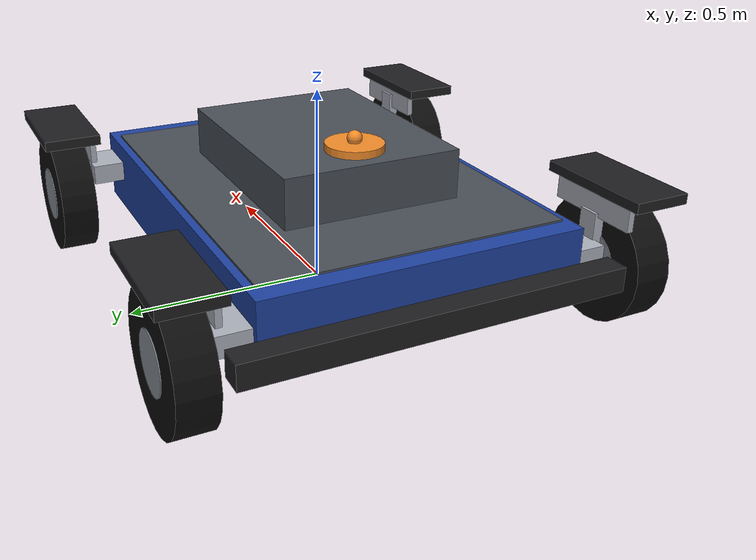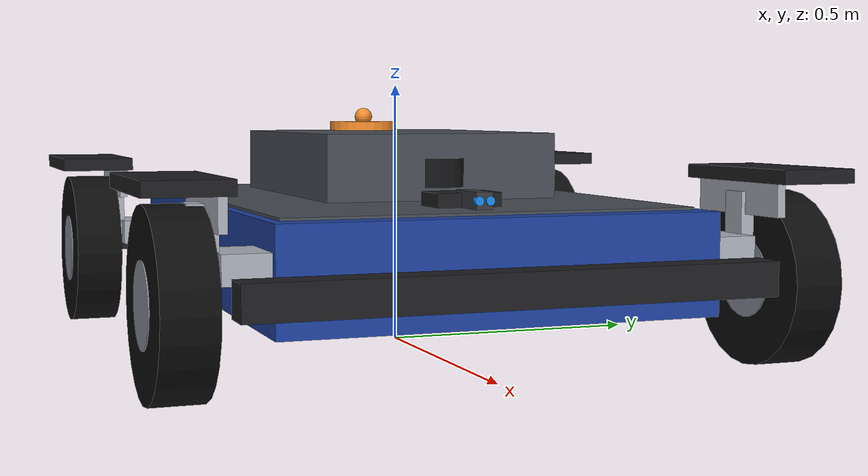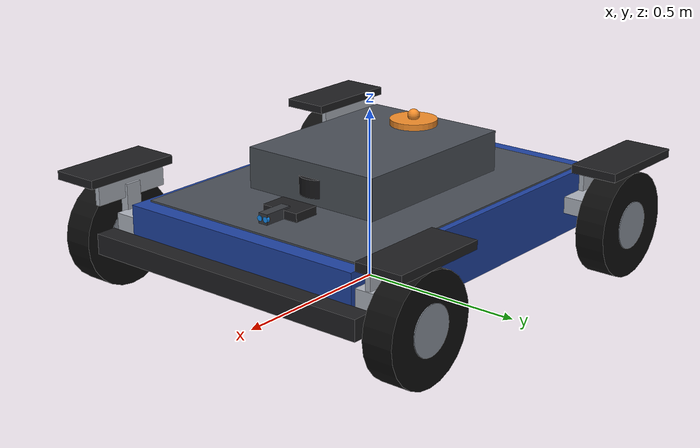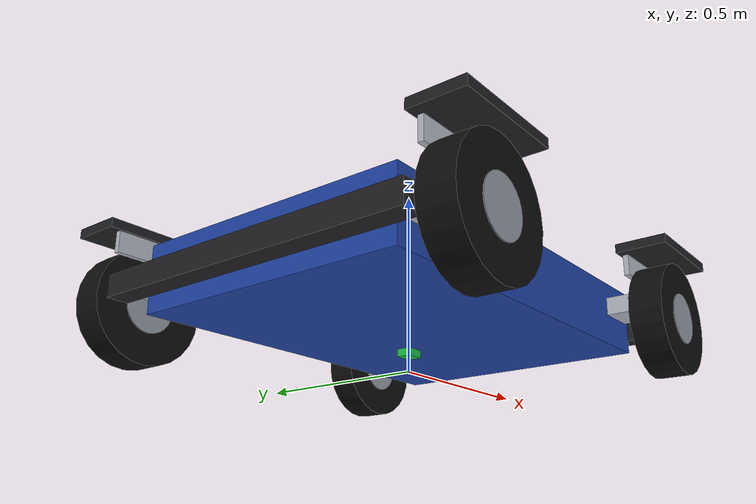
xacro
<?xml version="1.0"?>
<robot xmlns:xacro="http://www.ros.org/wiki/xacro" name="azemauto">

  <!-- Overall dimensions measured on the real robot -->
  <xacro:property name="robot_length" value="1.28"/>
  <xacro:property name="robot_width" value="1.05"/>
  <xacro:property name="robot_height" value="0.46"/>

  <!-- Main body proportions kept intentionally simple but visually close to a wide rover -->
  <xacro:property name="body_length" value="1.10"/>
  <xacro:property name="body_width" value="0.78"/>
  <xacro:property name="body_height" value="0.18"/>
  <xacro:property name="body_center_z" value="0.19"/>

  <xacro:property name="upper_deck_length" value="1.00"/>
  <xacro:property name="upper_deck_width" value="0.74"/>
  <xacro:property name="upper_deck_height" value="0.03"/>
  <xacro:property name="upper_deck_center_z" value="0.27"/>

  <xacro:property name="equipment_box_length" value="0.56"/>
  <xacro:property name="equipment_box_width" value="0.44"/>
  <xacro:property name="equipment_box_height" value="0.12"/>
  <xacro:property name="equipment_box_center_z" value="0.35"/>

  <!-- Wheel geometry and requested placement -->
  <xacro:property name="wheel_radius" value="0.155"/>
  <xacro:property name="wheel_width" value="0.09"/>
  <xacro:property name="half_track" value="0.535"/>
  <xacro:property name="half_wheelbase" value="0.475"/>

  <xacro:property name="front_wheel_x" value="0.475"/>
  <xacro:property name="rear_wheel_x" value="-0.475"/>
  <xacro:property name="left_wheel_y" value="0.535"/>
  <xacro:property name="right_wheel_y" value="-0.535"/>
  <xacro:property name="wheel_center_z" value="0.155"/>

  <!-- Simple guards and frame details to avoid a generic box silhouette -->
  <xacro:property name="fender_length" value="0.30"/>
  <xacro:property name="fender_width" value="0.14"/>
  <xacro:property name="fender_thickness" value="0.025"/>
  <xacro:property name="fender_center_z" value="0.34"/>
  <xacro:property name="fender_inner_brace_width" value="0.015"/>
  <xacro:property name="fender_inner_brace_height" value="0.08"/>
  <xacro:property name="fender_inner_brace_offset" value="0.055"/>

  <xacro:property name="side_rail_length" value="1.02"/>
  <xacro:property name="side_rail_width" value="0.05"/>
  <xacro:property name="side_rail_height" value="0.08"/>
  <xacro:property name="side_rail_y" value="0.36"/>
  <xacro:property name="side_rail_center_z" value="0.23"/>

  <xacro:property name="bumper_length" value="0.06"/>
  <xacro:property name="bumper_width" value="0.92"/>
  <xacro:property name="bumper_height" value="0.06"/>
  <xacro:property name="bumper_front_x" value="0.59"/>
  <xacro:property name="bumper_rear_x" value="-0.59"/>
  <xacro:property name="bumper_center_z" value="0.17"/>

  <xacro:property name="front_axle_length" value="0.12"/>
  <xacro:property name="front_axle_width" value="0.94"/>
  <xacro:property name="front_axle_height" value="0.05"/>
  <xacro:property name="front_axle_center_z" value="0.21"/>

  <xacro:property name="rear_axle_length" value="0.12"/>
  <xacro:property name="rear_axle_width" value="0.94"/>
  <xacro:property name="rear_axle_height" value="0.05"/>
  <xacro:property name="rear_axle_center_z" value="0.19"/>

  <xacro:property name="upright_length" value="0.05"/>
  <xacro:property name="upright_width" value="0.05"/>
  <xacro:property name="front_upright_height" value="0.12"/>
  <xacro:property name="rear_upright_height" value="0.10"/>
  <xacro:property name="front_upright_center_z" value="0.25"/>
  <xacro:property name="rear_upright_center_z" value="0.23"/>
  <xacro:property name="upright_y" value="0.49"/>

  <!-- Sensor frame placement requested for this phase -->
  <xacro:property name="imu_x" value="0.0"/>
  <xacro:property name="imu_y" value="0.0"/>
  <xacro:property name="imu_z" value="0.05"/>

  <xacro:property name="gps_x" value="-0.20"/>
  <xacro:property name="gps_y" value="0.0"/>
  <xacro:property name="gps_z" value="0.28"/>

  <xacro:property name="laser_x" value="0.22"/>
  <xacro:property name="laser_y" value="0.0"/>
  <xacro:property name="laser_z" value="0.34"/>
  <xacro:property name="laser_radius" value="0.055"/>
  <xacro:property name="laser_height" value="0.075"/>

  <xacro:property name="camera_x" value="0.40"/>
  <xacro:property name="camera_y" value="0.0"/>
  <xacro:property name="camera_z" value="0.30"/>
  <xacro:property name="camera_rel_x" value="${camera_x - laser_x}"/>
  <xacro:property name="camera_rel_y" value="${camera_y - laser_y}"/>
  <xacro:property name="camera_rel_z" value="${camera_z - laser_z}"/>

  <!-- Visual palette chosen to resemble a robust outdoor rover -->
  <material name="chassis_blue">
    <color rgba="0.12 0.26 0.63 1.0"/>
  </material>
  <material name="deck_gray">
    <color rgba="0.29 0.31 0.34 1.0"/>
  </material>
  <material name="frame_dark">
    <color rgba="0.12 0.12 0.13 1.0"/>
  </material>
  <material name="metal_light">
    <color rgba="0.68 0.70 0.74 1.0"/>
  </material>
  <material name="wheel_black">
    <color rgba="0.05 0.05 0.05 1.0"/>
  </material>
  <material name="wheel_rim">
    <color rgba="0.55 0.58 0.62 1.0"/>
  </material>
  <material name="imu_green">
    <color rgba="0.10 0.72 0.25 1.0"/>
  </material>
  <material name="gps_orange">
    <color rgba="0.95 0.55 0.16 1.0"/>
  </material>
  <material name="camera_gray">
    <color rgba="0.22 0.23 0.25 1.0"/>
  </material>
  <material name="camera_accent">
    <color rgba="0.08 0.55 0.95 1.0"/>
  </material>
  <material name="lidar_black">
    <color rgba="0.08 0.08 0.09 1.0"/>
  </material>
  <material name="lidar_red">
    <color rgba="0.82 0.10 0.10 1.0"/>
  </material>

  <!-- Reusable macro for the four large wheels -->
  <xacro:macro name="wheel_module" params="name x y z">
    <link name="${name}">
      <visual>
        <origin xyz="0 0 0" rpy="${pi / 2.0} 0 0"/>
        <geometry>
          <cylinder radius="${wheel_radius}" length="${wheel_width}"/>
        </geometry>
        <material name="wheel_black"/>
      </visual>
      <visual>
        <origin xyz="0 0 0" rpy="${pi / 2.0} 0 0"/>
        <geometry>
          <cylinder radius="${wheel_radius * 0.45}" length="${wheel_width * 1.05}"/>
        </geometry>
        <material name="wheel_rim"/>
      </visual>
      <collision>
        <origin xyz="0 0 0" rpy="${pi / 2.0} 0 0"/>
        <geometry>
          <cylinder radius="${wheel_radius}" length="${wheel_width}"/>
        </geometry>
      </collision>
    </link>

    <joint name="${name}_joint" type="fixed">
      <parent link="base_link"/>
      <child link="${name}"/>
      <origin xyz="${x} ${y} ${z}" rpy="0 0 0"/>
    </joint>
  </xacro:macro>

  <!-- Reusable visual-only fender geometry -->
  <xacro:macro name="fender_visual" params="prefix x y side">
    <visual name="${prefix}_top">
      <origin xyz="${x} ${y} ${fender_center_z}" rpy="0 0 0"/>
      <geometry>
        <box size="${fender_length} ${fender_width} ${fender_thickness}"/>
      </geometry>
      <material name="frame_dark"/>
    </visual>

    <visual name="${prefix}_inner_brace">
      <origin
        xyz="${x} ${y - side * fender_inner_brace_offset} ${fender_center_z - 0.03}"
        rpy="0 0 0"/>
      <geometry>
        <box
          size="${fender_length * 0.80} ${fender_inner_brace_width} ${fender_inner_brace_height}"/>
      </geometry>
      <material name="metal_light"/>
    </visual>
  </xacro:macro>

  <link name="base_link">
    <!-- Main lower chassis -->
    <visual name="lower_body">
      <origin xyz="0 0 ${body_center_z}" rpy="0 0 0"/>
      <geometry>
        <box size="${body_length} ${body_width} ${body_height}"/>
      </geometry>
      <material name="chassis_blue"/>
    </visual>

    <!-- Flat upper deck -->
    <visual name="upper_deck">
      <origin xyz="0 0 ${upper_deck_center_z}" rpy="0 0 0"/>
      <geometry>
        <box size="${upper_deck_length} ${upper_deck_width} ${upper_deck_height}"/>
      </geometry>
      <material name="deck_gray"/>
    </visual>

    <!-- Central equipment bay to avoid an overly flat silhouette -->
    <visual name="equipment_box">
      <origin xyz="-0.02 0 ${equipment_box_center_z}" rpy="0 0 0"/>
      <geometry>
        <box size="${equipment_box_length} ${equipment_box_width} ${equipment_box_height}"/>
      </geometry>
      <material name="deck_gray"/>
    </visual>

    <!-- Longitudinal rails -->
    <visual name="left_rail">
      <origin xyz="0 ${side_rail_y} ${side_rail_center_z}" rpy="0 0 0"/>
      <geometry>
        <box size="${side_rail_length} ${side_rail_width} ${side_rail_height}"/>
      </geometry>
      <material name="frame_dark"/>
    </visual>
    <visual name="right_rail">
      <origin xyz="0 ${-side_rail_y} ${side_rail_center_z}" rpy="0 0 0"/>
      <geometry>
        <box size="${side_rail_length} ${side_rail_width} ${side_rail_height}"/>
      </geometry>
      <material name="frame_dark"/>
    </visual>

    <!-- Front and rear bumper bars -->
    <visual name="front_bumper">
      <origin xyz="${bumper_front_x} 0 ${bumper_center_z}" rpy="0 0 0"/>
      <geometry>
        <box size="${bumper_length} ${bumper_width} ${bumper_height}"/>
      </geometry>
      <material name="frame_dark"/>
    </visual>
    <visual name="rear_bumper">
      <origin xyz="${bumper_rear_x} 0 ${bumper_center_z}" rpy="0 0 0"/>
      <geometry>
        <box size="${bumper_length} ${bumper_width} ${bumper_height}"/>
      </geometry>
      <material name="frame_dark"/>
    </visual>

    <!-- Visual hint of front steering and rear axle structure -->
    <visual name="front_axle">
      <origin xyz="${front_wheel_x} 0 ${front_axle_center_z}" rpy="0 0 0"/>
      <geometry>
        <box size="${front_axle_length} ${front_axle_width} ${front_axle_height}"/>
      </geometry>
      <material name="metal_light"/>
    </visual>
    <visual name="rear_axle">
      <origin xyz="${rear_wheel_x} 0 ${rear_axle_center_z}" rpy="0 0 0"/>
      <geometry>
        <box size="${rear_axle_length} ${rear_axle_width} ${rear_axle_height}"/>
      </geometry>
      <material name="metal_light"/>
    </visual>

    <visual name="front_left_upright">
      <origin xyz="${front_wheel_x} ${upright_y} ${front_upright_center_z}" rpy="0 0 0"/>
      <geometry>
        <box size="${upright_length} ${upright_width} ${front_upright_height}"/>
      </geometry>
      <material name="metal_light"/>
    </visual>
    <visual name="front_right_upright">
      <origin xyz="${front_wheel_x} ${-upright_y} ${front_upright_center_z}" rpy="0 0 0"/>
      <geometry>
        <box size="${upright_length} ${upright_width} ${front_upright_height}"/>
      </geometry>
      <material name="metal_light"/>
    </visual>
    <visual name="rear_left_upright">
      <origin xyz="${rear_wheel_x} ${upright_y} ${rear_upright_center_z}" rpy="0 0 0"/>
      <geometry>
        <box size="${upright_length} ${upright_width} ${rear_upright_height}"/>
      </geometry>
      <material name="metal_light"/>
    </visual>
    <visual name="rear_right_upright">
      <origin xyz="${rear_wheel_x} ${-upright_y} ${rear_upright_center_z}" rpy="0 0 0"/>
      <geometry>
        <box size="${upright_length} ${upright_width} ${rear_upright_height}"/>
      </geometry>
      <material name="metal_light"/>
    </visual>

    <!-- Camera support block at the front -->
    <visual name="camera_support">
      <origin xyz="0.34 0 0.26" rpy="0 0 0"/>
      <geometry>
        <box size="0.08 0.12 0.10"/>
      </geometry>
      <material name="frame_dark"/>
    </visual>

    <!-- Lidar pedestal integrated in the front sensor tower -->
    <visual name="lidar_pedestal">
      <origin xyz="${laser_x} ${laser_y} ${laser_z - 0.055}" rpy="0 0 0"/>
      <geometry>
        <cylinder radius="0.022" length="0.11"/>
      </geometry>
      <material name="metal_light"/>
    </visual>

    <!-- Simple wheel arch guards -->
    <xacro:fender_visual prefix="front_left" x="${front_wheel_x}" y="${left_wheel_y}" side="1.0"/>
    <xacro:fender_visual prefix="front_right" x="${front_wheel_x}" y="${right_wheel_y}" side="-1.0"/>
    <xacro:fender_visual prefix="rear_left" x="${rear_wheel_x}" y="${left_wheel_y}" side="1.0"/>
    <xacro:fender_visual prefix="rear_right" x="${rear_wheel_x}" y="${right_wheel_y}" side="-1.0"/>

    <!-- Simplified collision model kept intentionally compact -->
    <collision>
      <origin xyz="0 0 ${body_center_z}" rpy="0 0 0"/>
      <geometry>
        <box size="${body_length} ${body_width} ${body_height}"/>
      </geometry>
    </collision>
    <collision>
      <origin xyz="-0.02 0 ${equipment_box_center_z}" rpy="0 0 0"/>
      <geometry>
        <box size="${equipment_box_length} ${equipment_box_width} ${equipment_box_height}"/>
      </geometry>
    </collision>

    <!-- Approximate inertial properties for visualization-oriented use -->
    <inertial>
      <origin xyz="0 0 0.22" rpy="0 0 0"/>
      <mass value="45.0"/>
      <inertia
        ixx="2.75"
        ixy="0.0"
        ixz="0.0"
        iyy="4.75"
        iyz="0.0"
        izz="6.10"/>
    </inertial>
  </link>

  <!-- Sensor frames used by the rest of the ROS 2 workspace -->
  <link name="imu_link">
    <visual>
      <geometry>
        <box size="0.05 0.04 0.02"/>
      </geometry>
      <material name="imu_green"/>
    </visual>
  </link>

  <joint name="imu_joint" type="fixed">
    <parent link="base_link"/>
    <child link="imu_link"/>
    <origin xyz="${imu_x} ${imu_y} ${imu_z}" rpy="0 0 0"/>
  </joint>

  <link name="gps_link">
    <visual>
      <origin xyz="0 0 0.065" rpy="0 0 0"/>
      <geometry>
        <cylinder radius="0.012" length="0.13"/>
      </geometry>
      <material name="metal_light"/>
    </visual>
    <visual>
      <origin xyz="0 0 0.14" rpy="0 0 0"/>
      <geometry>
        <cylinder radius="0.07" length="0.018"/>
      </geometry>
      <material name="gps_orange"/>
    </visual>
    <visual>
      <origin xyz="0 0 0.159" rpy="0 0 0"/>
      <geometry>
        <sphere radius="0.018"/>
      </geometry>
      <material name="gps_orange"/>
    </visual>
  </link>

  <joint name="gps_joint" type="fixed">
    <parent link="base_link"/>
    <child link="gps_link"/>
    <origin xyz="${gps_x} ${gps_y} ${gps_z}" rpy="0 0 0"/>
  </joint>

  <link name="laser_link">
    <visual>
      <origin xyz="0 0 0" rpy="0 0 0"/>
      <geometry>
        <cylinder radius="${laser_radius}" length="${laser_height * 0.70}"/>
      </geometry>
      <material name="lidar_black"/>
    </visual>
    <visual>
      <origin xyz="0 0 ${laser_height * 0.24}" rpy="0 0 0"/>
      <geometry>
        <cylinder radius="${laser_radius * 0.78}" length="${laser_height * 0.18}"/>
      </geometry>
      <material name="lidar_red"/>
    </visual>
    <visual>
      <origin xyz="0 0 ${laser_height * 0.35}" rpy="0 0 0"/>
      <geometry>
        <sphere radius="${laser_radius * 0.18}"/>
      </geometry>
      <material name="lidar_black"/>
    </visual>
    <collision>
      <origin xyz="0 0 0" rpy="0 0 0"/>
      <geometry>
        <cylinder radius="${laser_radius}" length="${laser_height}"/>
      </geometry>
    </collision>
  </link>

  <joint name="laser_joint" type="fixed">
    <parent link="base_link"/>
    <child link="laser_link"/>
    <origin xyz="${laser_x} ${laser_y} ${laser_z}" rpy="0 0 0"/>
  </joint>

  <link name="camera_link">
    <visual>
      <origin xyz="0 0 0" rpy="0 0 0"/>
      <geometry>
        <box size="0.09 0.03 0.03"/>
      </geometry>
      <material name="camera_gray"/>
    </visual>
    <visual>
      <origin xyz="0.042 0.010 0" rpy="0 ${pi / 2.0} 0"/>
      <geometry>
        <cylinder radius="0.008" length="0.010"/>
      </geometry>
      <material name="camera_accent"/>
    </visual>
    <visual>
      <origin xyz="0.042 -0.010 0" rpy="0 ${pi / 2.0} 0"/>
      <geometry>
        <cylinder radius="0.008" length="0.010"/>
      </geometry>
      <material name="camera_accent"/>
    </visual>
  </link>

  <joint name="camera_joint" type="fixed">
    <parent link="laser_link"/>
    <child link="camera_link"/>
    <origin xyz="${camera_rel_x} ${camera_rel_y} ${camera_rel_z}" rpy="0 0 0"/>
  </joint>

  <!-- Wheels -->
  <xacro:wheel_module name="front_left_wheel_link" x="${front_wheel_x}" y="${left_wheel_y}" z="${wheel_center_z}"/>
  <xacro:wheel_module name="front_right_wheel_link" x="${front_wheel_x}" y="${right_wheel_y}" z="${wheel_center_z}"/>
  <xacro:wheel_module name="rear_left_wheel_link" x="${rear_wheel_x}" y="${left_wheel_y}" z="${wheel_center_z}"/>
  <xacro:wheel_module name="rear_right_wheel_link" x="${rear_wheel_x}" y="${right_wheel_y}" z="${wheel_center_z}"/>

  <!-- camera_depth_frame and optical frames remain published by realsense2_camera -->
</robot>
